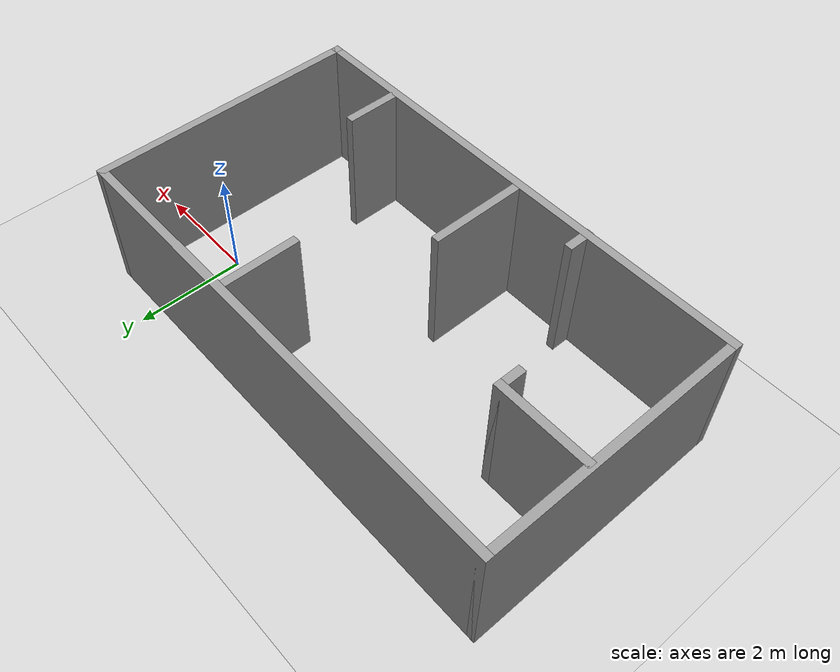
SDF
<sdf version="1.7">
 <world name="default">
  <light name="sun" type="directional">
   <pose>0 0 10 0 -0 0</pose>
   <diffuse>0.8 0.8 0.8 1</diffuse>
   <specular>0.2 0.2 0.2 1</specular>
   <attenuation>
    <range>1000</range>
    <constant>0.9</constant>
    <linear>0.01</linear>
    <quadratic>0.001</quadratic>
   </attenuation>
   <direction>-0.5 0.1 -0.9</direction>
   <spot><inner_angle>0</inner_angle><outer_angle>0</outer_angle><falloff>0</falloff></spot>
  </light>
  <model name="ground_plane">
   <static>1</static>
   <link name="link">
    <collision name="collision">
     <geometry><plane><normal>0 0 1</normal><size>100 100</size></plane></geometry>
     <surface><friction><ode><mu>100</mu><mu2>50</mu2></ode></friction></surface>
    </collision>
    <visual name="visual">
     <cast_shadows>0</cast_shadows>
     <geometry><plane><normal>0 0 1</normal><size>100 100</size></plane></geometry>
     <material>
      <script><uri>file://media/materials/scripts/gazebo.material</uri><name>Gazebo/Grey</name></script>
     </material>
    </visual>
   </link>
  </model>
  <gravity>0 0 -9.8</gravity>
  <magnetic_field>6e-06 2.3e-05 -4.2e-05</magnetic_field>
  <atmosphere type="adiabatic"/>
  <physics type="ode">
   <max_step_size>0.001</max_step_size>
   <real_time_factor>1</real_time_factor>
   <real_time_update_rate>1000</real_time_update_rate>
  </physics>
  <scene><ambient>0.4 0.4 0.4 1</ambient><background>0.7 0.7 0.7 1</background><shadows>1</shadows></scene>
  <audio><device>default</device></audio>
  <spherical_coordinates>
   <surface_model>EARTH_WGS84</surface_model>
   <latitude_deg>0</latitude_deg>
   <longitude_deg>0</longitude_deg>
   <elevation>0</elevation>
   <heading_deg>0</heading_deg>
  </spherical_coordinates>
  <model name="Untitled_0">
   <pose>-3.37371 -0.151296 0 0 -0 0</pose>
   <link name="Wall_0">
    <collision name="Wall_0_Collision">
     <geometry><box><size>9 0.15 2.5</size></box></geometry>
     <pose>0 0 1.25 0 -0 0</pose>
    </collision>
    <visual name="Wall_0_Visual">
     <pose>0 0 1.25 0 -0 0</pose>
     <geometry><box><size>9 0.15 2.5</size></box></geometry>
     <material>
      <script><uri>file://media/materials/scripts/gazebo.material</uri><name>Gazebo/Grey</name></script>
      <ambient>1 1 1 1</ambient>
     </material>
     <meta><layer>0</layer></meta>
    </visual>
    <pose>0 1.6975 0 0 -0 0</pose>
   </link>
   <link name="Wall_1">
    <collision name="Wall_1_Collision">
     <geometry><box><size>5 0.15 2.5</size></box></geometry>
     <pose>0 0 1.25 0 -0 0</pose>
    </collision>
    <visual name="Wall_1_Visual">
     <pose>0 0 1.25 0 -0 0</pose>
     <geometry><box><size>5 0.15 2.5</size></box></geometry>
     <material>
      <script><uri>file://media/materials/scripts/gazebo.material</uri><name>Gazebo/Grey</name></script>
      <ambient>1 1 1 1</ambient>
     </material>
     <meta><layer>0</layer></meta>
    </visual>
    <pose>4.425 -0.7275 0 0 -0 -1.5708</pose>
   </link>
   <link name="Wall_10">
    <collision name="Wall_10_Collision">
     <geometry><box><size>1.5 0.15 2.5</size></box></geometry>
     <pose>0 0 1.25 0 -0 0</pose>
    </collision>
    <visual name="Wall_10_Visual">
     <pose>0 0 1.25 0 -0 0</pose>
     <geometry><box><size>1.5 0.15 2.5</size></box></geometry>
     <material>
      <script><uri>file://media/materials/scripts/gazebo.material</uri><name>Gazebo/Grey</name></script>
      <ambient>1 1 1 1</ambient>
     </material>
     <meta><layer>0</layer></meta>
    </visual>
    <pose>1.195 0.9925 0 0 -0 -1.5708</pose>
   </link>
   <link name="Wall_12">
    <collision name="Wall_12_Collision">
     <geometry><box><size>1 0.15 2.5</size></box></geometry>
     <pose>0 0 1.25 0 -0 0</pose>
    </collision>
    <visual name="Wall_12_Visual">
     <pose>0 0 1.25 0 -0 0</pose>
     <geometry><box><size>1 0.15 2.5</size></box></geometry>
     <material>
      <script><uri>file://media/materials/scripts/gazebo.material</uri><name>Gazebo/Grey</name></script>
      <ambient>1 1 1 1</ambient>
     </material>
     <meta><layer>0</layer></meta>
    </visual>
    <pose>2.795 -2.5975 0 0 -0 1.5708</pose>
   </link>
   <link name="Wall_14">
    <collision name="Wall_14_Collision">
     <geometry><box><size>1.75 0.15 2.5</size></box></geometry>
     <pose>0 0 1.25 0 -0 0</pose>
    </collision>
    <visual name="Wall_14_Visual">
     <pose>0 0 1.25 0 -0 0</pose>
     <geometry><box><size>1.75 0.15 2.5</size></box></geometry>
     <material>
      <script><uri>file://media/materials/scripts/gazebo.material</uri><name>Gazebo/Grey</name></script>
      <ambient>1 1 1 1</ambient>
     </material>
     <meta><layer>0</layer></meta>
    </visual>
    <pose>-0.195 -2.2025 0 0 -0 1.5708</pose>
   </link>
   <link name="Wall_2">
    <collision name="Wall_2_Collision">
     <geometry><box><size>9 0.15 2.5</size></box></geometry>
     <pose>0 0 1.25 0 -0 0</pose>
    </collision>
    <visual name="Wall_2_Visual">
     <pose>0 0 1.25 0 -0 0</pose>
     <geometry><box><size>9 0.15 2.5</size></box></geometry>
     <material>
      <script><uri>file://media/materials/scripts/gazebo.material</uri><name>Gazebo/Grey</name></script>
      <ambient>1 1 1 1</ambient>
     </material>
     <meta><layer>0</layer></meta>
    </visual>
    <pose>0 -3.1525 0 0 -0 3.14159</pose>
   </link>
   <link name="Wall_3">
    <collision name="Wall_3_Collision">
     <geometry><box><size>5 0.15 2.5</size></box></geometry>
     <pose>0 0 1.25 0 -0 0</pose>
    </collision>
    <visual name="Wall_3_Visual">
     <pose>0 0 1.25 0 -0 0</pose>
     <geometry><box><size>5 0.15 2.5</size></box></geometry>
     <material>
      <script><uri>file://media/materials/scripts/gazebo.material</uri><name>Gazebo/Grey</name></script>
      <ambient>1 1 1 1</ambient>
     </material>
     <meta><layer>0</layer></meta>
    </visual>
    <pose>-4.425 -0.7275 0 0 -0 1.5708</pose>
   </link>
   <link name="Wall_5">
    <collision name="Wall_5_Collision">
     <geometry><box><size>1.75 0.15 2.5</size></box></geometry>
     <pose>0 0 1.25 0 -0 0</pose>
    </collision>
    <visual name="Wall_5_Visual">
     <pose>0 0 1.25 0 -0 0</pose>
     <geometry><box><size>1.75 0.15 2.5</size></box></geometry>
     <material>
      <script><uri>file://media/materials/scripts/gazebo.material</uri><name>Gazebo/Grey</name></script>
      <ambient>1 1 1 1</ambient>
     </material>
     <meta><layer>0</layer></meta>
    </visual>
    <pose>-3.565 -0.1925 0 0 -0 0</pose>
   </link>
   <link name="Wall_6">
    <collision name="Wall_6_Collision">
     <geometry><box><size>0.5 0.15 2.5</size></box></geometry>
     <pose>0 0 1.25 0 -0 0</pose>
    </collision>
    <visual name="Wall_6_Visual">
     <pose>0 0 1.25 0 -0 0</pose>
     <geometry><box><size>0.5 0.15 2.5</size></box></geometry>
     <material>
      <script><uri>file://media/materials/scripts/gazebo.material</uri><name>Gazebo/Grey</name></script>
      <ambient>1 1 1 1</ambient>
     </material>
     <meta><layer>0</layer></meta>
    </visual>
    <pose>-2.765 -0.3675 0 0 -0 -1.5708</pose>
   </link>
   <link name="Wall_8">
    <collision name="Wall_8_Collision">
     <geometry><box><size>0.5 0.15 2.5</size></box></geometry>
     <pose>0 0 1.25 0 -0 0</pose>
    </collision>
    <visual name="Wall_8_Visual">
     <pose>0 0 1.25 0 -0 0</pose>
     <geometry><box><size>0.5 0.15 2.5</size></box></geometry>
     <material>
      <script><uri>file://media/materials/scripts/gazebo.material</uri><name>Gazebo/Grey</name></script>
      <ambient>1 1 1 1</ambient>
     </material>
     <meta><layer>0</layer></meta>
    </visual>
    <pose>-1.635 -2.9875 0 0 -0 1.5708</pose>
   </link>
   <static>1</static>
  </model>
 </world>
</sdf>
